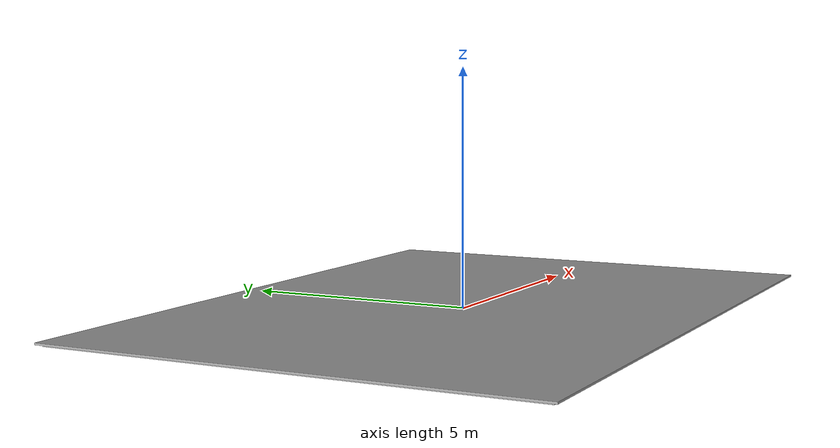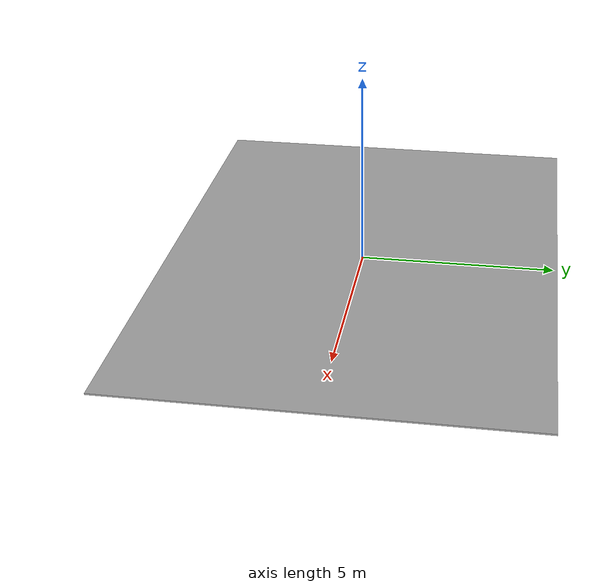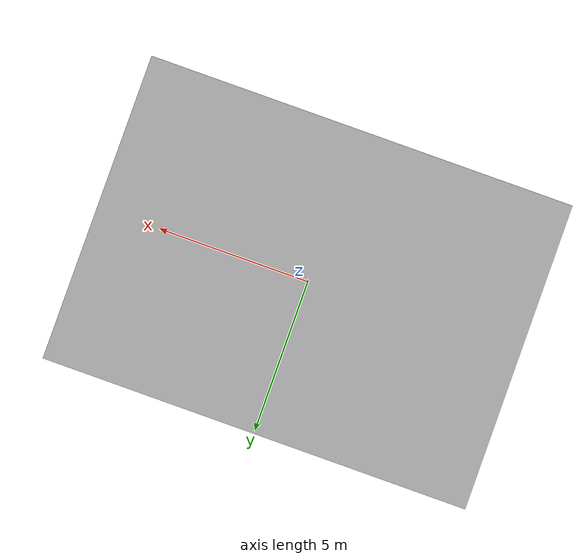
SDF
<?xml version="1.0"?>
<sdf version="1.10">
  <model name="yard_gravel_pad">
    <static>true</static>
    <link name="link">
      <visual name="gravel_surface">
        <pose>0 0 0.02 0 0 0</pose>
        <geometry>
          <box>
            <size>14 10 0.04</size>
          </box>
        </geometry>
        <material>
          <script>
            <uri>model://ground/materials/scripts</uri>
            <uri>model://ground/materials/textures</uri>
            <name>Gazebo/Gravel</name>
          </script>
        </material>
      </visual>
      <visual name="concrete_curb">
        <pose>0 0 0.06 0 0 0</pose>
        <geometry>
          <box>
            <size>14.2 10.2 0.04</size>
          </box>
        </geometry>
        <material>
          <ambient>0.55 0.55 0.55 1</ambient>
          <diffuse>0.65 0.65 0.65 1</diffuse>
        </material>
      </visual>
    </link>
  </model>
</sdf>
